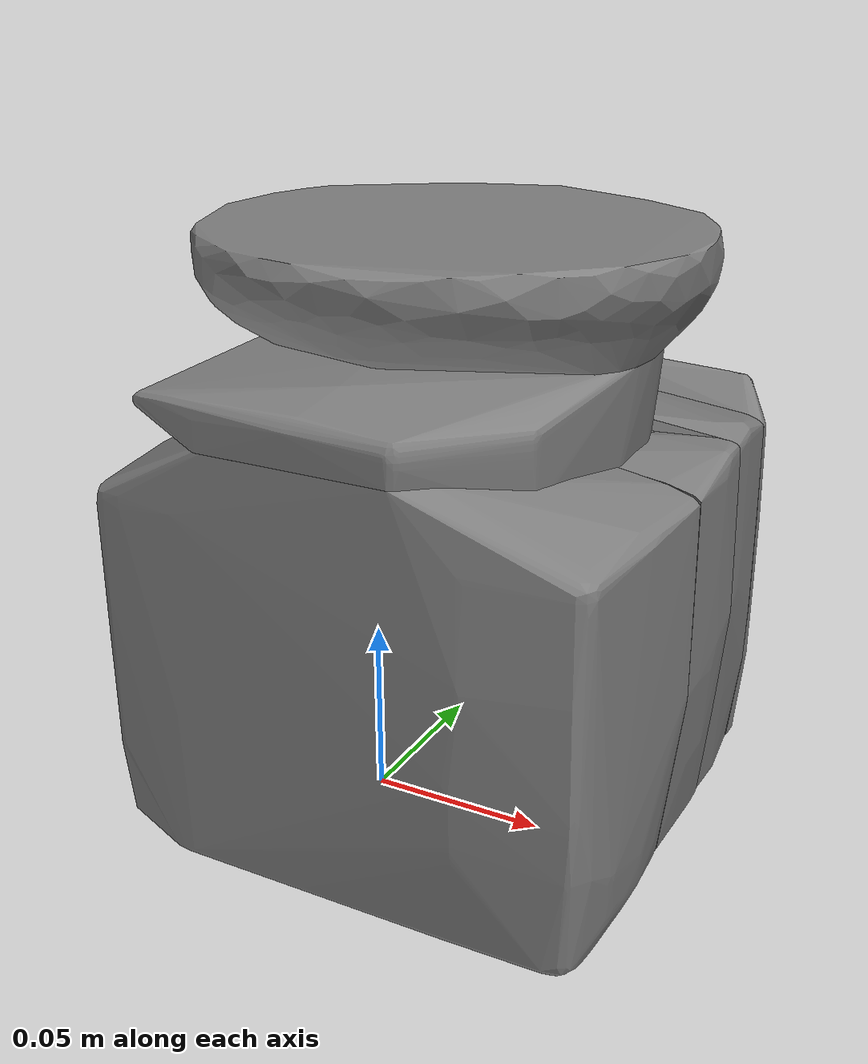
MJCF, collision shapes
<mujoco model="ycb_070-a_colored_wood_blocks">
  <compiler meshdir="meshes" texturedir="meshes" angle="radian"/>
  <default>
    <default class="visual"><geom contype="0" conaffinity="0" group="2" density="0"/></default>
    <default class="collision"><geom group="3"/></default>
  </default>
  <asset>
    <texture name="ycb_070-a_colored_wood_blocks_tex" type="2d" file="ycb_070-a_colored_wood_blocks_texture.png"/>
    <material name="ycb_070-a_colored_wood_blocks_mat" texture="ycb_070-a_colored_wood_blocks_tex" specular="0.2" shininess="0.3"/>
    <mesh name="ycb_070-a_colored_wood_blocks_visual" file="ycb_070-a_colored_wood_blocks_visual.obj"/>
    <mesh name="ycb_070-a_colored_wood_blocks_hull0" file="ycb_070-a_colored_wood_blocks_hull0.obj"/>
    <mesh name="ycb_070-a_colored_wood_blocks_hull1" file="ycb_070-a_colored_wood_blocks_hull1.obj"/>
    <mesh name="ycb_070-a_colored_wood_blocks_hull2" file="ycb_070-a_colored_wood_blocks_hull2.obj"/>
    <mesh name="ycb_070-a_colored_wood_blocks_hull3" file="ycb_070-a_colored_wood_blocks_hull3.obj"/>
    <mesh name="ycb_070-a_colored_wood_blocks_hull4" file="ycb_070-a_colored_wood_blocks_hull4.obj"/>
    <mesh name="ycb_070-a_colored_wood_blocks_hull5" file="ycb_070-a_colored_wood_blocks_hull5.obj"/>
    <mesh name="ycb_070-a_colored_wood_blocks_hull6" file="ycb_070-a_colored_wood_blocks_hull6.obj"/>
    <mesh name="ycb_070-a_colored_wood_blocks_hull7" file="ycb_070-a_colored_wood_blocks_hull7.obj"/>
  </asset>
  <worldbody>
    <body name="object" pos="0 0 0">
      <freejoint name="object_free"/>
      <geom type="mesh" mesh="ycb_070-a_colored_wood_blocks_visual" material="ycb_070-a_colored_wood_blocks_mat" class="visual"/>
      <geom type="mesh" mesh="ycb_070-a_colored_wood_blocks_hull0" class="collision"/>
      <geom type="mesh" mesh="ycb_070-a_colored_wood_blocks_hull1" class="collision"/>
      <geom type="mesh" mesh="ycb_070-a_colored_wood_blocks_hull2" class="collision"/>
      <geom type="mesh" mesh="ycb_070-a_colored_wood_blocks_hull3" class="collision"/>
      <geom type="mesh" mesh="ycb_070-a_colored_wood_blocks_hull4" class="collision"/>
      <geom type="mesh" mesh="ycb_070-a_colored_wood_blocks_hull5" class="collision"/>
      <geom type="mesh" mesh="ycb_070-a_colored_wood_blocks_hull6" class="collision"/>
      <geom type="mesh" mesh="ycb_070-a_colored_wood_blocks_hull7" class="collision"/>
    </body>
  </worldbody>
</mujoco>
